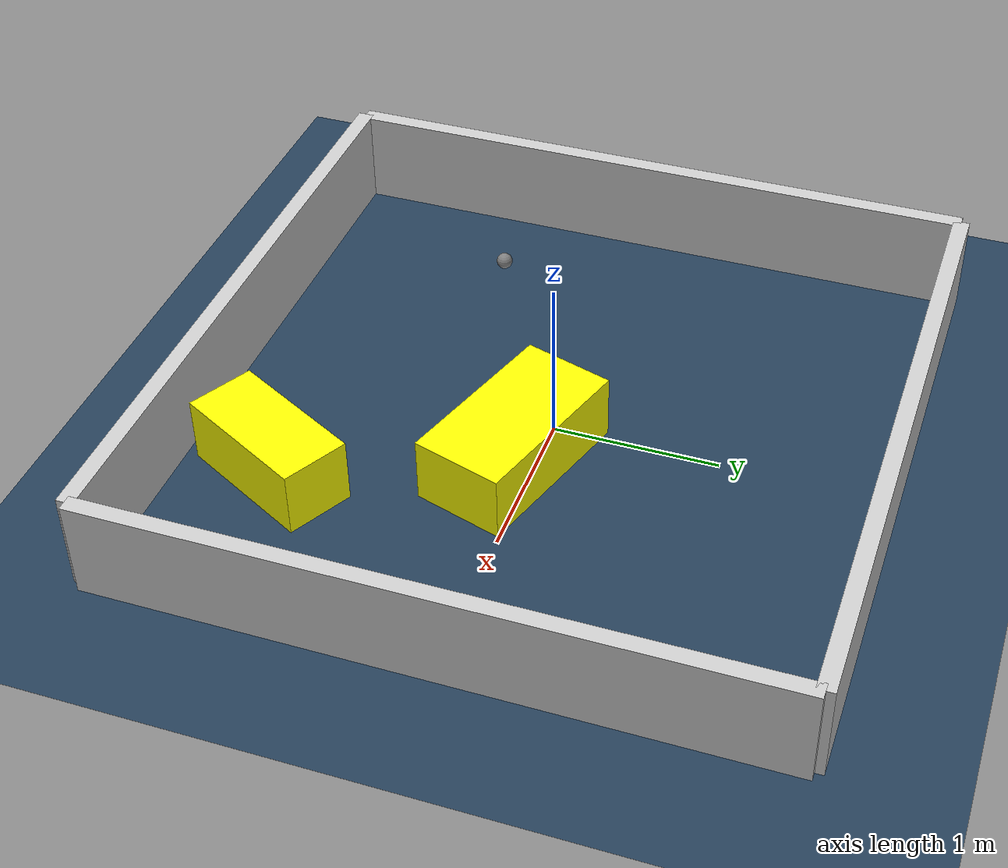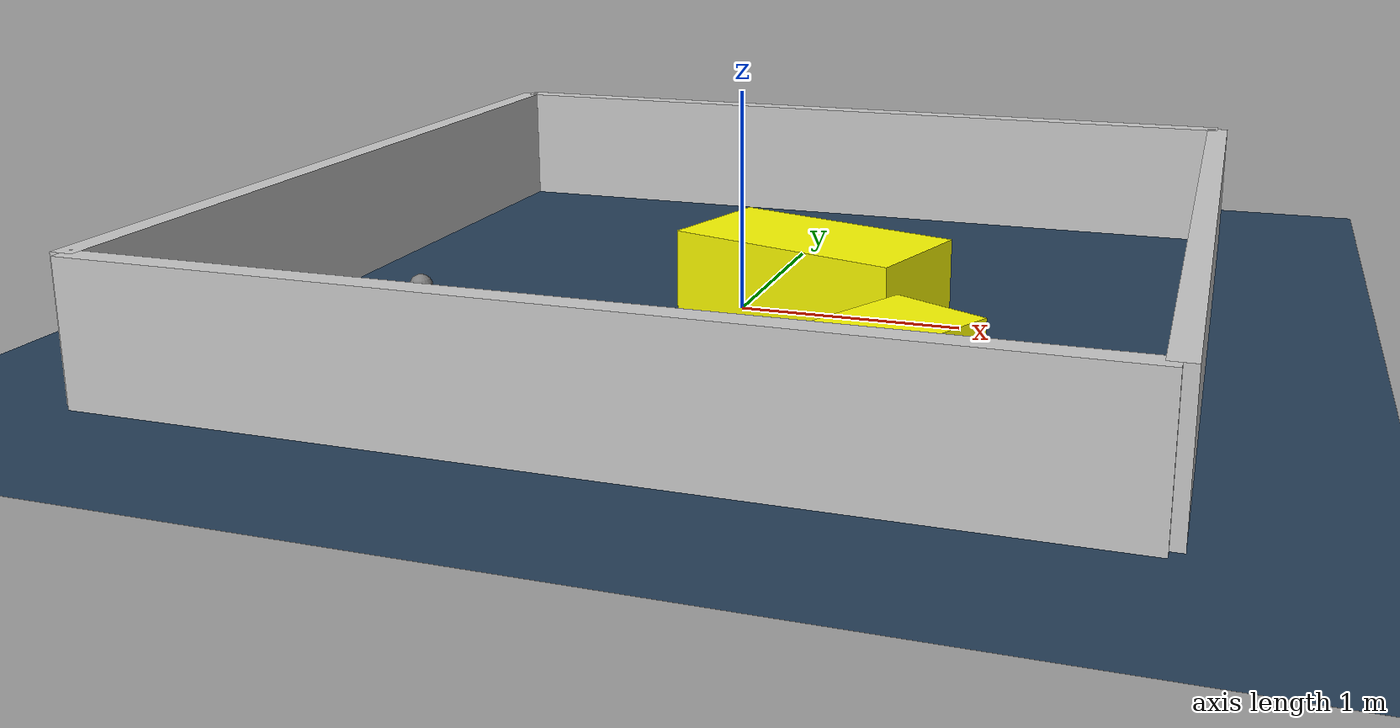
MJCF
<?xml version="1.0" ?>
<mujoco model="generated_environment">
  <option timestep="0.01" integrator="RK4" cone="elliptic"/>
  <default>
    <geom density="1"/>
  </default>
  <asset>
    <texture builtin="gradient" height="3072" rgb1="0.3 0.5 0.7" rgb2="0 0 0" type="skybox" width="512"/>
    <texture builtin="checker" height="300" mark="edge" markrgb="0.8 0.8 0.8" name="groundplane" rgb1="0.2 0.3 0.4" rgb2="0.1 0.2 0.3" type="2d" width="300"/>
    <material name="groundplane" reflectance="0.2" texrepeat="5 5" texture="groundplane" texuniform="true"/>
    <material name="robot" rgba="0.0 1.0 0.0 1"/>
  </asset>
  <worldbody>
    <light dir="0 0 -1" directional="true" pos="0 0 1.5"/>
    <geom condim="4" friction="1.0 0.005 0.001" material="groundplane" name="floor" size="0 0 0.05" type="plane"/>
    <body name="walls">
      <geom name="wall_1" condim="4" pos="-2.0 0.0 0.3" rgba="0.800000011920929 0.800000011920929 0.800000011920929 1.0" size="0.05 2.0 0.3" type="box"/>
      <geom name="wall_2" condim="4" pos="2.0 0.0 0.3" rgba="0.800000011920929 0.800000011920929 0.800000011920929 1.0" size="0.05 2.0 0.3" type="box"/>
      <geom name="wall_3" condim="4" pos="0.0 -2.0 0.3" rgba="0.800000011920929 0.800000011920929 0.800000011920929 1.0" size="2.0 0.05 0.3" type="box"/>
      <geom name="wall_4" condim="4" pos="0.0 2.0 0.3" rgba="0.800000011920929 0.800000011920929 0.800000011920929 1.0" size="2.0 0.05 0.3" type="box"/>
    </body>
    <body name="robot">
      <joint name="joint_x" type="slide" pos="0 0 0" axis="1 0 0"/>
      <joint name="joint_y" type="slide" pos="0 0 0" axis="0 1 0"/>
      <geom name="robot" type="sphere" pos="-1.233419516569999 -0.7452055516971297 0.2" size="0.05" mass="5." friction="1.0 0.005 0.0001" condim="4"/>
      <site name="sensor_ball"/>
    </body>
    <body name="obstacle_1_movable">
      <geom name="obstacle_1_movable" condim="4" pos="0.3613195705354446 -0.11648505262486886 0.2" euler="0 0 162.69505000816758" friction="1.0 0.005 0.001" rgba="1 1 0 1" size="0.5365622013834606 0.2812084829253799 0.2" type="box" mass="0.1"/>
      <joint type="free"/>
    </body>
    <body name="obstacle_2_movable">
      <geom name="obstacle_2_movable" condim="4" pos="0.8974118031753295 -1.394011608312721 0.2" euler="0 0 242.2278962831138" friction="1.0 0.005 0.001" rgba="1 1 0 1" size="0.4404667669634034 0.21040214964471035 0.2" type="box" mass="0.1"/>
      <joint type="free"/>
    </body>
  </worldbody>
  <actuator>
    <motor name="actuator_x" joint="joint_x" gear="1" ctrlrange="-1 1"/>
    <motor name="actuator_y" joint="joint_y" gear="1" ctrlrange="-1 1"/>
  </actuator>
</mujoco>
